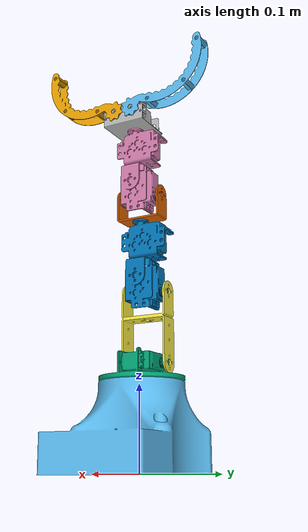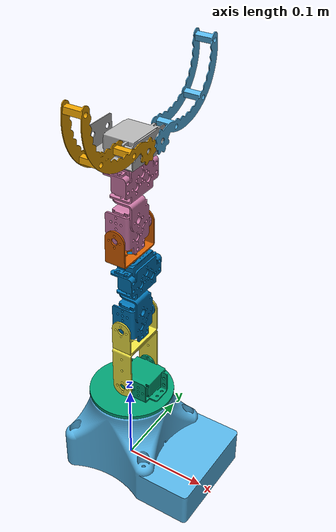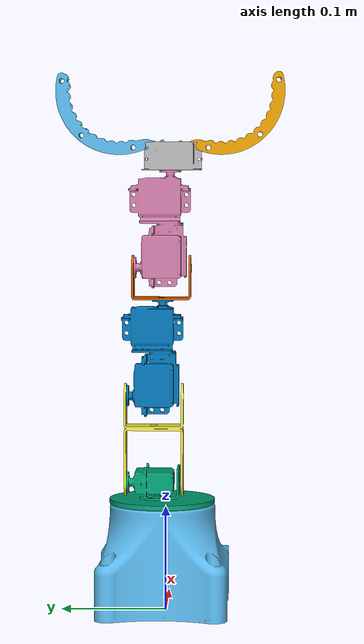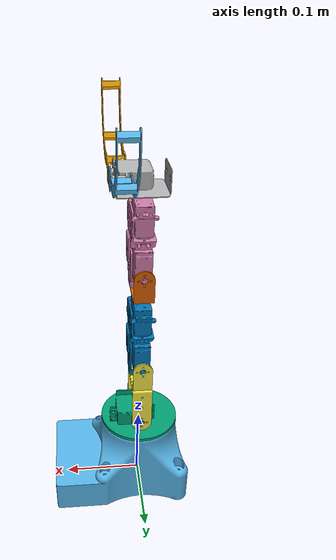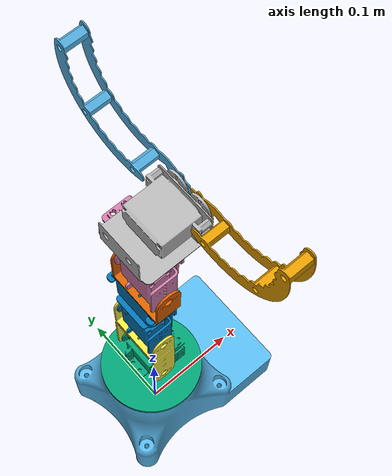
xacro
<?xml version="1.0"?>
<robot xmlns:xacro="http://www.ros.org/wiki/xacro" name="hexaarm">

    <xacro:arg name="is_sim" default="true"/>

    <xacro:include filename="$(find hexaarm_description)/urdf/hexaarm_gazebo.xacro" />
    <xacro:include filename="$(find hexaarm_description)/urdf/hexaarm_ros2_control.xacro" />

    <xacro:property name="PI" value="3.14159"/>
    <xacro:property name="effort" value="30"/>
    <xacro:property name="velocity" value="10.0"/>

    <xacro:macro name="default_inertial" params="mass">
        <inertial>
            <mass value="${mass}"/>
            <inertia ixx="1.0" ixy="0.0" ixz="0.0" iyy="1.0" iyz="0.0" izz="1.0"/>
        </inertial>
    </xacro:macro>

    <link name="world"/>

    <joint name="dummy_joint" type="fixed">
        <parent link="world"/>
        <child link="base_link"/>
        <origin xyz="0 0.02 0.025" rpy="0 0 0"/>
    </joint>

    <!-- Base Link -->
    <link name="base_link">
        <xacro:default_inertial mass="1.0"/>
        <visual>
            <origin xyz="0 0 0" rpy="0 0 0"/>
            <geometry>
                <mesh filename="package://hexaarm_description/meshes/base_assembly.stl" scale="0.001 0.001 0.001"/>
            </geometry>
        </visual>
        <collision>
            <origin xyz="0 0 0" rpy="0 0 0"/>
            <geometry>
                <mesh filename="package://hexaarm_description/meshes/base_assembly.stl" scale="0.001 0.001 0.001"/>
            </geometry>
        </collision>
    </link>

    <joint name="base_shoulder" type="revolute">
        <parent link="base_link"/>
        <child link="shoulder_link"/>
        <axis xyz="0 0 1"/>
        <limit lower="-${pi/2}" upper="${pi/2}" velocity="${velocity}" effort="${effort}"/>
        <origin xyz="0.0 -0.0165 0.0735" rpy="0.0 0.0 0.0"/>
    </joint>

    <!-- Shoulder Link -->
    <link name="shoulder_link">
        <xacro:default_inertial mass="1.0"/>
        <visual>
            <origin xyz="0 0 0" rpy="0 0 0"/>
            <geometry>
                <mesh filename="package://hexaarm_description/meshes/base_shoulder_assembly.stl" scale="0.001 0.001 0.001"/>
            </geometry>
        </visual>
        <collision>
            <origin xyz="0 0 0" rpy="0 0 0"/>
            <geometry>
                <mesh filename="package://hexaarm_description/meshes/base_shoulder_assembly.stl" scale="0.001 0.001 0.001"/>
            </geometry>
        </collision>
    </link>

    <joint name="shoulder_elbow" type="revolute">
        <parent link="shoulder_link"/>
        <child link="elbow_link"/>
        <axis xyz="0 1 0"/>
        <limit lower="-${pi/2}" upper="${pi/2}" velocity="${velocity}" effort="${effort}"/>
        <origin xyz="0.0005 -0.01195 0.02420" rpy="0.0 0.0 0.0"/>
    </joint>

    <!-- Elbow Link -->
    <link name="elbow_link">
        <xacro:default_inertial mass="1.0"/>
        <visual>
            <origin xyz="0 0 0.058" rpy="0 0 0"/>
            <geometry>
                <mesh filename="package://hexaarm_description/meshes/shoulder_elbow_assembly.stl" scale="0.001 0.001 0.001"/>
            </geometry>
        </visual>
        <collision>
            <origin xyz="0 0 0.058" rpy="0 0 0"/>
            <geometry>
                <mesh filename="package://hexaarm_description/meshes/shoulder_elbow_assembly.stl" scale="0.001 0.001 0.001"/>
            </geometry>
        </collision>
    </link>

    <joint name="elbow_wrist" type="revolute">
        <parent link="elbow_link"/>
        <child link="wrist_link"/>
        <axis xyz="1 0 0"/>
        <limit lower="-${pi/2}" upper="${pi/2}" velocity="${velocity}" effort="${effort}"/>
        <origin xyz="0.0002 0.02115 0.083085" rpy="1.571 0.0 1.571"/>
    </joint>

    <!-- Wrist Link -->
    <link name="wrist_link">
        <xacro:default_inertial mass="1.0"/>
        <visual>
            <origin xyz="0 0.008 0" rpy="0 0 0"/>
            <geometry>
                <mesh filename="package://hexaarm_description/meshes/elbow_wrist1_assembly.stl" scale="0.001 0.001 0.001"/>
            </geometry>
        </visual>
        <collision>
            <origin xyz="0 0.008 0" rpy="0 0 0"/>
            <geometry>
                <mesh filename="package://hexaarm_description/meshes/elbow_wrist1_assembly.stl" scale="0.001 0.001 0.001"/>
            </geometry>
        </collision>
    </link>

    <joint name="wrist_ulna" type="revolute">
        <parent link="wrist_link"/>
        <child link="ulna_link"/>
        <axis xyz="0 1.0 0"/>
        <limit lower="-${pi/2}" upper="${pi/2}" velocity="${velocity}" effort="${effort}"/>
        <origin xyz="-0.008425 0.0918 -0.00005" rpy="0.0 0.0 0.0"/>
    </joint>

    <!-- Ulna Link -->
    <link name="ulna_link">
        <xacro:default_inertial mass="1.0"/>
        <visual>
            <origin xyz="0 0 0" rpy="0 0 0"/>
            <geometry>
                <mesh filename="package://hexaarm_description/meshes/wrist1_wrist2_assembly.stl" scale="0.001 0.001 0.001"/>
            </geometry>
        </visual>
        <collision>
            <origin xyz="0 0 0" rpy="0 0 0"/>
            <geometry>
                <mesh filename="package://hexaarm_description/meshes/wrist1_wrist2_assembly.stl" scale="0.001 0.001 0.001"/>
            </geometry>
        </collision>
    </link>

    <joint name="ulna_febur" type="revolute">
        <parent link="ulna_link"/>
        <child link="febur_link"/>
        <axis xyz="1.0 0 0"/>
        <limit lower="-${pi/2}" upper="${pi/2}" velocity="${velocity}" effort="${effort}"/>
        <origin xyz="0.0014 0.03011 0.0" rpy="0.0 0.0 0.0"/>
    </joint>

    <!-- Febur Link -->
    <link name="febur_link">
        <xacro:default_inertial mass="1.0"/>
        <visual>
            <origin xyz="0 0.008 0.00015" rpy="0 0 0"/>
            <geometry>
                <mesh filename="package://hexaarm_description/meshes/elbow_wrist1_assembly.stl" scale="0.001 0.001 0.001"/>
            </geometry>
        </visual>
        <collision>
            <origin xyz="0 0.008 0.00015" rpy="0 0 0"/>
            <geometry>
                <mesh filename="package://hexaarm_description/meshes/elbow_wrist1_assembly.stl" scale="0.001 0.001 0.001"/>
            </geometry>
        </collision>
    </link>

    <joint name="febur_gripper" type="revolute">
        <parent link="febur_link"/>
        <child link="gripper_link"/>
        <axis xyz="0 1.0 0"/>
        <limit lower="-${pi/2}" upper="${pi/2}" velocity="${velocity}" effort="${effort}"/>
        <origin xyz="-0.0099 0.092500225 0.0" rpy="0.0 0.0 3.141592654"/>
    </joint>

    <link name="gripper_link">
        <xacro:default_inertial mass="1.0"/>
        <visual>
            <origin xyz="-0.02340 -0.03 -0.03" rpy="0 0 0"/>
            <geometry>
                <mesh filename="package://hexaarm_description/meshes/gripper_assembly.stl" scale="0.001 0.001 0.001"/>
            </geometry>
        </visual>
        <collision>
            <origin xyz="-0.02340 -0.03 -0.03" rpy="0 0 0"/>
            <geometry>
                <mesh filename="package://hexaarm_description/meshes/gripper_assembly.stl" scale="0.001 0.001 0.001"/>
            </geometry>
        </collision>
    </link>

    <joint name="left_finger" type="continuous">
        <parent link="gripper_link"/>
        <child link="left_finger_link"/>
        <axis xyz="0 0 1.0"/>
        <mimic joint="right_finger" multiplier="-1"/>
        <origin xyz="0.0115 -0.01475 0.0355" rpy="0.0 0.0 -2.3"/>
    </joint>

    <link name="left_finger_link">
        <xacro:default_inertial mass="1.0"/>
        <visual>
            <origin xyz="0.02 0.0665 0.0" rpy="0 0 0"/>
            <geometry>
                <mesh filename="package://hexaarm_description/meshes/left_gripper.stl" scale="0.001 0.001 0.001"/>
            </geometry>
        </visual>
        <collision>
            <origin xyz="0.02 0.0665 0.0" rpy="0 0 0"/>
            <geometry>
                <mesh filename="package://hexaarm_description/meshes/left_gripper.stl" scale="0.001 0.001 0.001"/>
            </geometry>
        </collision>
    </link>

    <joint name="right_finger" type="continuous">
        <parent link="gripper_link"/>
        <child link="right_finger_link"/>
        <axis xyz="0 0 1.0"/>
        <limit lower="0.0" upper="${pi/2}" velocity="${velocity}" effort="${effort}"/>
        <origin xyz="-0.012 -0.015 0.0357" rpy="0.0 0.0 3.03"/>
    </joint>

    <link name="right_finger_link">
        <xacro:default_inertial mass="1.0"/>
        <visual>
            <origin xyz="0.1037 0.034 -0.0013" rpy="0 0 0"/>
            <geometry>
                <mesh filename="package://hexaarm_description/meshes/right_gripper.stl" scale="0.001 0.001 0.001"/>
            </geometry>
        </visual>
        <collision>
            <origin xyz="0.1037 0.034 -0.0013" rpy="0 0 0"/>
            <geometry>
                <mesh filename="package://hexaarm_description/meshes/right_gripper.stl" scale="0.001 0.001 0.001"/>
            </geometry>
        </collision>
    </link>

</robot>
